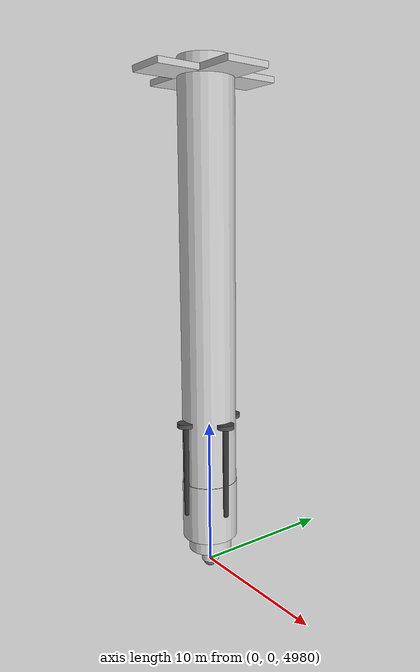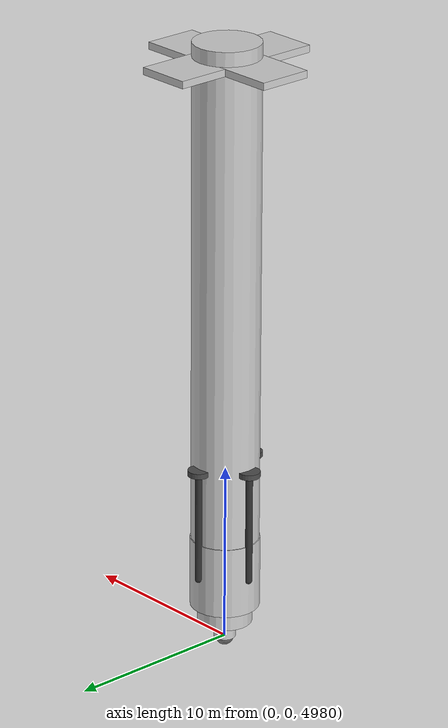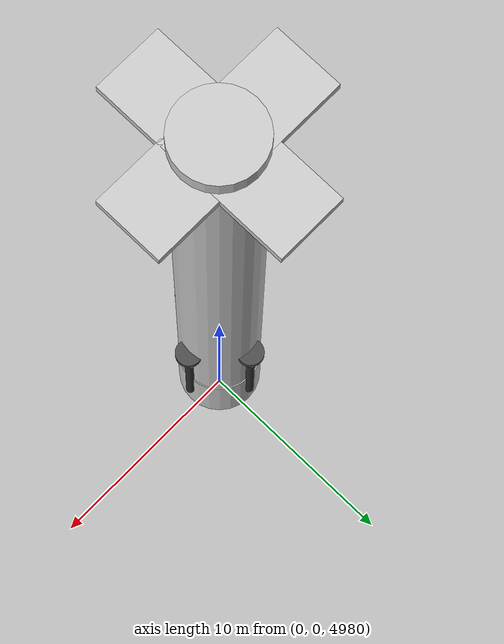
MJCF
<!-- Rocket landing scene (modelled after mujoco_menagerie/skydio_x2/scene.xml) -->
<mujoco model="rocket_scene">
  <include file="rocket.xml"/>

  <statistic center="0 0 0" extent="200"/>

  <visual>
    <headlight diffuse="0.6 0.6 0.6" ambient="0.3 0.3 0.3" specular="0 0 0"/>
    <global offwidth="640" offheight="480"/>
    <quality shadowsize="4096"/>
    <map znear="0.005" zfar="50" shadowclip="0.1"/>
    <rgba haze="0.15 0.25 0.35 1"/>
  </visual>

  <asset>
    <texture type="skybox" file="desert.png" gridsize="3 4" gridlayout=".U..LFRB.D.."/>
    <texture type="2d" name="groundplane" builtin="checker" mark="edge"
             rgb1="0.25 0.35 0.45" rgb2="0.15 0.2 0.25" markrgb="0.8 0.8 0.8"
             width="300" height="300"/>
    <material name="groundplane" texture="groundplane" texuniform="true"
              texrepeat="0.05 0.05" reflectance="0.2"/>
  </asset>

  <worldbody>
    <light pos="0 0 1.5" dir="0 0 -1" directional="true"/>
    <geom name="ground" type="box" size="5000 5000 0.5" pos="0 0 -0.5"
          material="groundplane" contype="1" conaffinity="1"/>
  </worldbody>
</mujoco>

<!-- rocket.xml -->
<!-- Rocket first stage – real-scale model (included by scene.xml) -->
<mujoco model="rocket">
  <compiler angle="radian" coordinate="local" inertiafromgeom="auto"/>

  <option timestep="0.002" gravity="0 0 -9.81" integrator="RK4">
    <flag warmstart="enable"/>
  </option>

  <default>
    <joint armature="0" damping="0.1" limited="true"/>
    <geom contype="1" conaffinity="1" friction="1.0 0.005 0.0001" rgba="0.8 0.8 0.8 1"/>
    <motor ctrllimited="true" ctrlrange="-1 1"/>
  </default>

  <asset>
    <material name="body_white" rgba="1 1 1 1"/>
    <material name="body_black" rgba="0.15 0.15 0.15 1"/>
    <material name="engine_metal" rgba="0.5 0.5 0.5 1" specular="0.8" shininess="0.8"/>
    <material name="grid_fin_mat" rgba="0.3 0.3 0.3 1"/>
  </asset>

  <worldbody>
    <!-- Rocket first stage – real dimensions -->
    <!-- 42 m tall, 3.7 m diameter (radius 1.85 m), 540 000 kg -->
    <!-- Body layout (z = -22 to +20, total 42 m): -->
    <!--   Nozzle bottom -22, engines -21 to -19, octaweb -19 to -18, -->
    <!--   engine section -18 to -14, LOX/RP-1 tanks -14 to +14, interstage +14 to +20 -->
    <body name="rocket" pos="0 0 5000">
      <freejoint name="rocket_joint"/>

      <!-- Inertial properties (uniform cylinder approximation) -->
      <!-- Ix = Iy = M/12*(3r² + h²) = 540000/12*(3*1.85² + 42²) ≈ 80 000 000 -->
      <!-- Iz = M/2*r² = 540000/2*1.85² ≈ 925 000 -->
      <inertial pos="0 0 5" mass="540000" diaginertia="80000000 80000000 925000"/>

      <!-- Overhead camera (skydiver view – looking straight down) -->
      <camera name="skydiver" pos="0 0 250" xyaxes="1 0 0 0 1 0" fovy="90"/>

      <!-- Main body – LOX/RP-1 tank section (white), 28 m tall -->
      <geom name="first_stage_lox" type="cylinder" pos="0 0 0" size="1.85 14.0" material="body_white"/>

      <!-- Engine section (bottom, darker), 4 m tall -->
      <geom name="engine_section" type="cylinder" pos="0 0 -16" size="1.9 2.0" material="body_black"/>

      <!-- Octaweb engine mount + single Merlin nozzle bell -->
      <geom name="octaweb" type="cylinder" pos="0 0 -18.5" size="1.5 0.5" material="engine_metal"/>
      <geom name="merlin_nozzle" type="cylinder" pos="0 0 -19.5" size="0.6 0.5" material="engine_metal"/>

      <!-- Grid fins (4 at 90° intervals, mounted horizontally with pivot) -->
      <body name="grid_fin_1" pos="1.9 0 13">
        <joint name="grid_fin_1_pitch" type="hinge" axis="0 1 0" range="-1.0 1.0" damping="100000" stiffness="500000"/>
        <geom name="grid_fin_1_geom" type="box" size="2.5 1.5 0.2" material="grid_fin_mat" contype="0" conaffinity="0"/>
      </body>

      <body name="grid_fin_2" pos="-1.9 0 13">
        <joint name="grid_fin_2_pitch" type="hinge" axis="0 1 0" range="-1.0 1.0" damping="100000" stiffness="500000"/>
        <geom name="grid_fin_2_geom" type="box" size="2.5 1.5 0.2" material="grid_fin_mat" contype="0" conaffinity="0"/>
      </body>

      <body name="grid_fin_3" pos="0 1.9 13">
        <joint name="grid_fin_3_pitch" type="hinge" axis="1 0 0" range="-1.0 1.0" damping="100000" stiffness="500000"/>
        <geom name="grid_fin_3_geom" type="box" size="1.5 2.5 0.2" material="grid_fin_mat" contype="0" conaffinity="0"/>
      </body>

      <body name="grid_fin_4" pos="0 -1.9 13">
        <joint name="grid_fin_4_pitch" type="hinge" axis="1 0 0" range="-1.0 1.0" damping="100000" stiffness="500000"/>
        <geom name="grid_fin_4_geom" type="box" size="1.5 2.5 0.2" material="grid_fin_mat" contype="0" conaffinity="0"/>
      </body>

      <!-- Landing legs (4 at cardinal directions) -->
      <!-- TOP-DOWN deployment: stowed pointing UP (angle=0), -->
      <!-- deploy downward & outward (angle=2.4 rad ≈ 137°). -->
      <!-- 6 m struts with triangular A-frame brace for rigidity. -->
      <!-- At full deploy: pad z ≈ -20.4 (below nozzle at -20). -->

      <!-- Leg 1: +X -->
      <body name="leg_1" pos="1.9 0 -16">
        <joint name="leg_1_deploy" type="hinge" axis="0 1 0" range="0 2.4" damping="5000000" stiffness="0"/>
        <geom name="leg_1_strut" type="capsule" fromto="0 0 0 0 0 6" size="0.2" rgba="0.2 0.2 0.2 1" contype="0" conaffinity="0"/>
        <geom name="leg_1_brace" type="capsule" fromto="-1.5 0 0 0 0 6" size="0.12" rgba="0.25 0.25 0.25 1" contype="0" conaffinity="0"/>
        <geom name="leg_1_pad" type="cylinder" pos="0 0 6.3" size="0.6 0.15" rgba="0.3 0.3 0.3 1"/>
      </body>

      <!-- Leg 2: -X -->
      <body name="leg_2" pos="-1.9 0 -16">
        <joint name="leg_2_deploy" type="hinge" axis="0 -1 0" range="0 2.4" damping="5000000" stiffness="0"/>
        <geom name="leg_2_strut" type="capsule" fromto="0 0 0 0 0 6" size="0.2" rgba="0.2 0.2 0.2 1" contype="0" conaffinity="0"/>
        <geom name="leg_2_brace" type="capsule" fromto="1.5 0 0 0 0 6" size="0.12" rgba="0.25 0.25 0.25 1" contype="0" conaffinity="0"/>
        <geom name="leg_2_pad" type="cylinder" pos="0 0 6.3" size="0.6 0.15" rgba="0.3 0.3 0.3 1"/>
      </body>

      <!-- Leg 3: +Y -->
      <body name="leg_3" pos="0 1.9 -16">
        <joint name="leg_3_deploy" type="hinge" axis="-1 0 0" range="0 2.4" damping="5000000" stiffness="0"/>
        <geom name="leg_3_strut" type="capsule" fromto="0 0 0 0 0 6" size="0.2" rgba="0.2 0.2 0.2 1" contype="0" conaffinity="0"/>
        <geom name="leg_3_brace" type="capsule" fromto="0 -1.5 0 0 0 6" size="0.12" rgba="0.25 0.25 0.25 1" contype="0" conaffinity="0"/>
        <geom name="leg_3_pad" type="cylinder" pos="0 0 6.3" size="0.6 0.15" rgba="0.3 0.3 0.3 1"/>
      </body>

      <!-- Leg 4: -Y -->
      <body name="leg_4" pos="0 -1.9 -16">
        <joint name="leg_4_deploy" type="hinge" axis="1 0 0" range="0 2.4" damping="5000000" stiffness="0"/>
        <geom name="leg_4_strut" type="capsule" fromto="0 0 0 0 0 6" size="0.2" rgba="0.2 0.2 0.2 1" contype="0" conaffinity="0"/>
        <geom name="leg_4_brace" type="capsule" fromto="0 1.5 0 0 0 6" size="0.12" rgba="0.25 0.25 0.25 1" contype="0" conaffinity="0"/>
        <geom name="leg_4_pad" type="cylinder" pos="0 0 6.3" size="0.6 0.15" rgba="0.3 0.3 0.3 1"/>
      </body>

      <!-- Force application sites -->
      <site name="thrust_site" pos="0 0 -20" size="0.5"/>
      <site name="rcs_top_x_pos" pos="1.9 0 13" size="0.2"/>
      <site name="rcs_top_x_neg" pos="-1.9 0 13" size="0.2"/>
      <site name="rcs_top_y_pos" pos="0 1.9 13" size="0.2"/>
      <site name="rcs_top_y_neg" pos="0 -1.9 13" size="0.2"/>
    </body>
  </worldbody>

  <!-- Prevent self-collision between rocket sub-bodies -->
  <contact>
    <exclude body1="rocket" body2="leg_1"/>
    <exclude body1="rocket" body2="leg_2"/>
    <exclude body1="rocket" body2="leg_3"/>
    <exclude body1="rocket" body2="leg_4"/>
    <exclude body1="leg_1" body2="leg_2"/>
    <exclude body1="leg_1" body2="leg_3"/>
    <exclude body1="leg_1" body2="leg_4"/>
    <exclude body1="leg_2" body2="leg_3"/>
    <exclude body1="leg_2" body2="leg_4"/>
    <exclude body1="leg_3" body2="leg_4"/>
  </contact>

  <actuator>
    <!-- Main engine thrust (scaled to preserve T/W ≈ 2.0) -->
    <general name="main_thrust" site="thrust_site" gear="0 0 10800000 0 0 0" ctrlrange="0 1"/>

    <!-- Thrust Vector Control (scaled to preserve angular acceleration) -->
    <!-- α_old = 25000/1500 ≈ 16.7 rad/s²;  new gear = 80e6 × 16.7 ≈ 1.33e9 -->
    <general name="tvc_pitch" site="thrust_site" gear="0 0 0 1333000000 0 0" ctrlrange="-1 1"/>
    <general name="tvc_yaw"   site="thrust_site" gear="0 0 0 0 1333000000 0" ctrlrange="-1 1"/>

    <!-- Grid fin actuators (scaled by Ixy ratio ≈ 53 333) -->
    <motor name="grid_fin_1_ctrl" joint="grid_fin_1_pitch" gear="26700000" ctrlrange="-1 1"/>
    <motor name="grid_fin_2_ctrl" joint="grid_fin_2_pitch" gear="26700000" ctrlrange="-1 1"/>
    <motor name="grid_fin_3_ctrl" joint="grid_fin_3_pitch" gear="26700000" ctrlrange="-1 1"/>
    <motor name="grid_fin_4_ctrl" joint="grid_fin_4_pitch" gear="26700000" ctrlrange="-1 1"/>

    <!-- Landing leg deployment (position-servo, range 0-2.4 for top-down deploy) -->
    <!-- Extremely stiff: kp=10M holds position rigidly, kv=1M damps oscillation -->
    <position name="leg_1_ctrl" joint="leg_1_deploy" kp="10000000" kv="1000000" ctrlrange="0 2.4"/>
    <position name="leg_2_ctrl" joint="leg_2_deploy" kp="10000000" kv="1000000" ctrlrange="0 2.4"/>
    <position name="leg_3_ctrl" joint="leg_3_deploy" kp="10000000" kv="1000000" ctrlrange="0 2.4"/>
    <position name="leg_4_ctrl" joint="leg_4_deploy" kp="10000000" kv="1000000" ctrlrange="0 2.4"/>

    <!-- Cold gas RCS thrusters -->
    <!-- Pitch/roll (body X/Y torque): scaled by Ixy ratio ≈ 53 333 -->
    <general name="rcs_x_pos" site="rcs_top_x_pos" gear="0 0 0 0 26700000 0" ctrlrange="-1 1"/>
    <general name="rcs_y_pos" site="rcs_top_y_pos" gear="0 0 0 26700000 0 0" ctrlrange="-1 1"/>
    <!-- Yaw (body Z torque): scaled by Iz ratio ≈ 30 833 -->
    <general name="rcs_x_neg" site="rcs_top_x_neg" gear="0 0 0 0 0 15400000" ctrlrange="-1 1"/>
    <general name="rcs_y_neg" site="rcs_top_y_neg" gear="0 0 0 0 0 15400000" ctrlrange="-1 1"/>
  </actuator>

  <sensor>
    <framepos    name="rocket_pos"    objtype="body" objname="rocket"/>
    <framequat   name="rocket_quat"   objtype="body" objname="rocket"/>
    <framelinvel name="rocket_linvel" objtype="body" objname="rocket"/>
    <frameangvel name="rocket_angvel" objtype="body" objname="rocket"/>

    <accelerometer name="imu_accel" site="thrust_site"/>
    <gyro          name="imu_gyro"  site="thrust_site"/>

    <touch name="leg_1_contact" site="thrust_site"/>
    <touch name="leg_2_contact" site="thrust_site"/>
    <touch name="leg_3_contact" site="thrust_site"/>
    <touch name="leg_4_contact" site="thrust_site"/>
  </sensor>
</mujoco>
